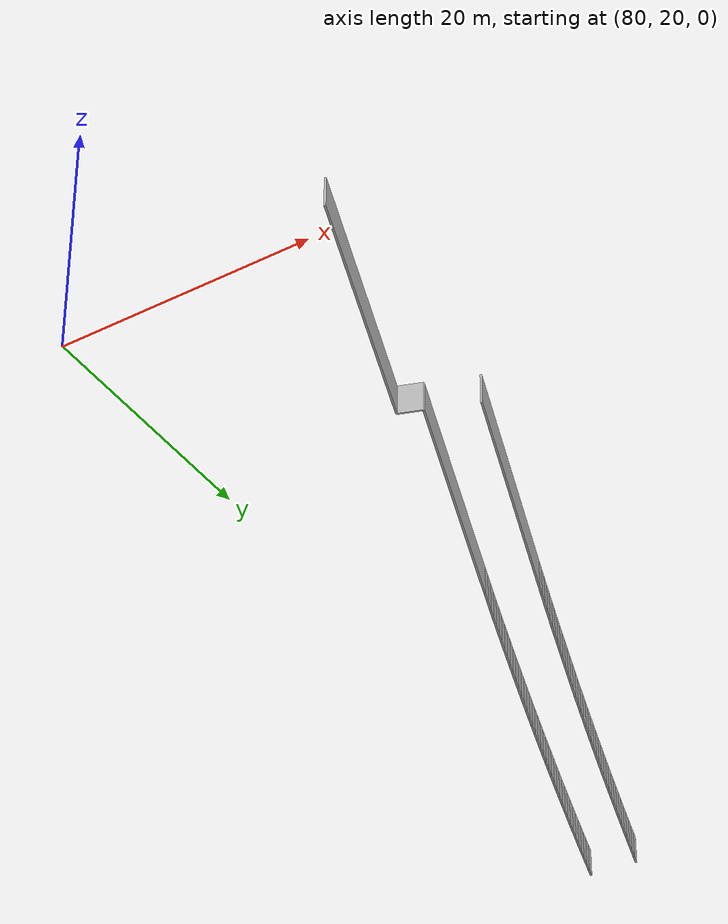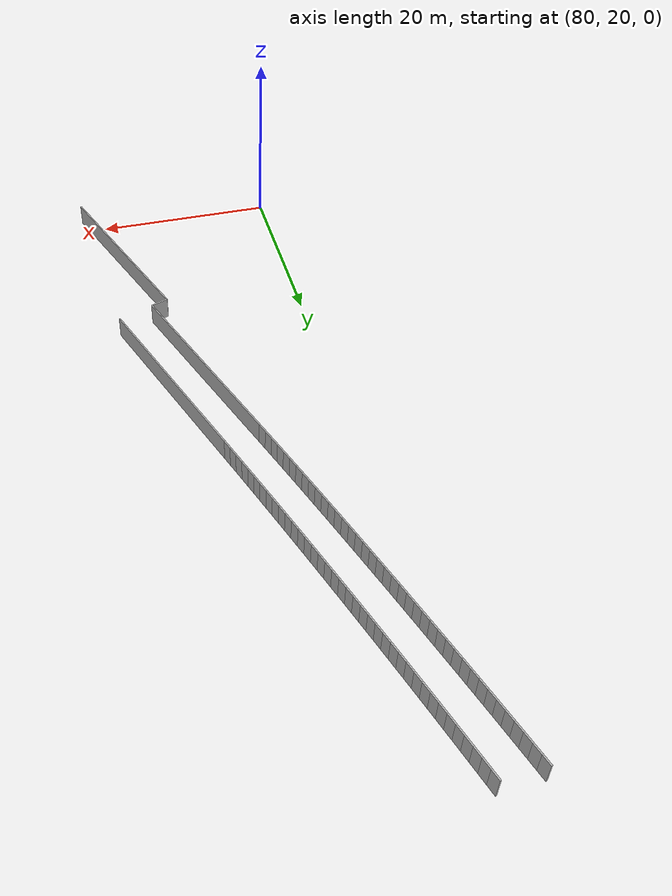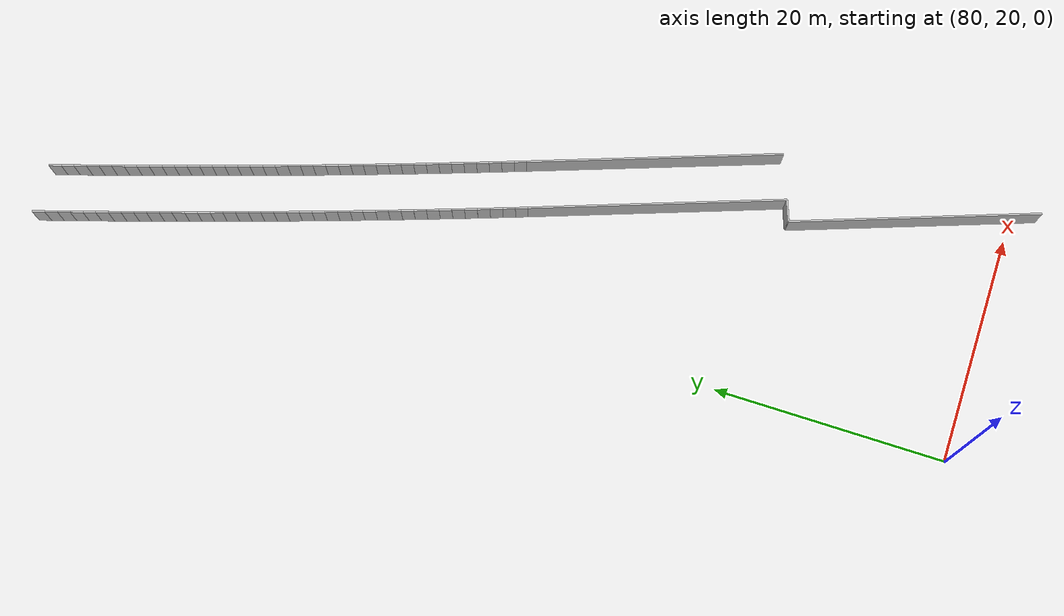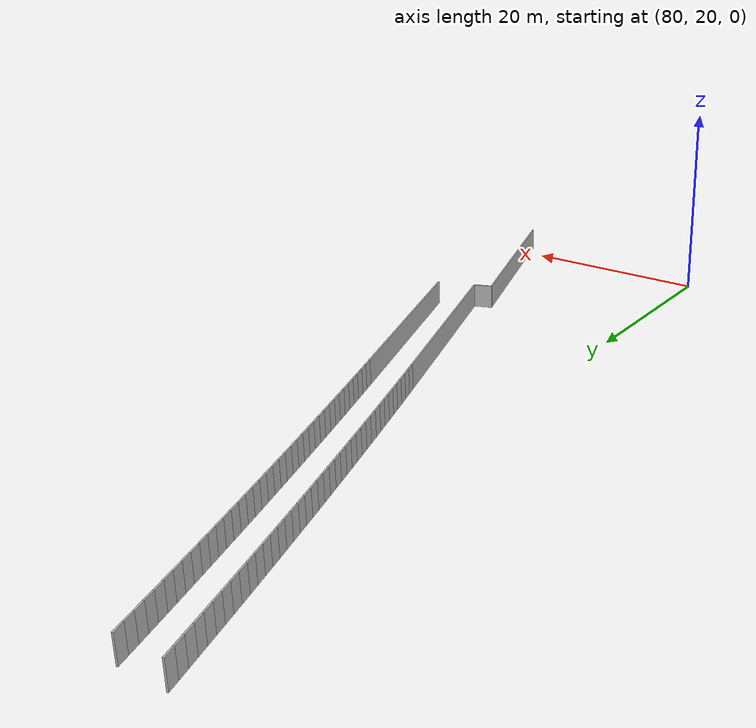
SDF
<?xml version="1.0" ?>
<sdf version="1.6">
  <model name="sps_0109">
    <pose frame="">0 0 0 0 -0 0</pose>
    <static>1</static>
    <self_collide>0</self_collide>
    <allow_auto_disable>0</allow_auto_disable>
    <link name="Wall204">
      <kinematic>0</kinematic>
      <gravity>1</gravity>
      <self_collide>0</self_collide>
      <collision name="collision">
        <geometry>
          <box>
            <size>1.93009 0.15 2.5</size>
          </box>
        </geometry>
        <pose frame="">0 0 0 0 -0 0</pose>
      </collision>
      <visual name="visual">
        <geometry>
          <box>
            <size>1.93009 0.15 2.5</size>
          </box>
        </geometry>
        <pose frame="">0 0 0 0 -0 0</pose>
        <cast_shadows>1</cast_shadows>
        <transparency>0.0</transparency>
      </visual>
      <pose frame="">96.2631 38.5402 1.25 0 -0 0.344273</pose>
    </link>
    <link name="Wall205">
      <kinematic>0</kinematic>
      <gravity>1</gravity>
      <self_collide>0</self_collide>
      <collision name="collision">
        <geometry>
          <box>
            <size>22.055 0.15 2.5</size>
          </box>
        </geometry>
        <pose frame="">0 0 0 0 -0 0</pose>
      </collision>
      <visual name="visual">
        <geometry>
          <box>
            <size>22.055 0.15 2.5</size>
          </box>
        </geometry>
        <pose frame="">0 0 0 0 -0 0</pose>
        <cast_shadows>1</cast_shadows>
        <transparency>0.0</transparency>
      </visual>
      <pose frame="">97.331 50.6375 1.25 0 0 -1.22819</pose>
    </link>
    <link name="Wall265">
      <kinematic>0</kinematic>
      <gravity>1</gravity>
      <self_collide>0</self_collide>
      <collision name="collision">
        <geometry>
          <box>
            <size>21.5873 0.15 2.5</size>
          </box>
        </geometry>
        <pose frame="">0 0 0 0 -0 0</pose>
      </collision>
      <visual name="visual">
        <geometry>
          <box>
            <size>21.5873 0.15 2.5</size>
          </box>
        </geometry>
        <pose frame="">0 0 0 0 -0 0</pose>
        <cast_shadows>1</cast_shadows>
        <transparency>0.0</transparency>
      </visual>
      <pose frame="">98.9965 28.0538 1.25 0 -0 1.91496</pose>
    </link>
    <link name="Wall550">
      <kinematic>0</kinematic>
      <gravity>1</gravity>
      <self_collide>0</self_collide>
      <collision name="collision">
        <geometry>
          <box>
            <size>22.066 0.15 2.5</size>
          </box>
        </geometry>
        <pose frame="">0 0 0 0 -0 0</pose>
      </collision>
      <visual name="visual">
        <geometry>
          <box>
            <size>22.066 0.15 2.5</size>
          </box>
        </geometry>
        <pose frame="">0 0 0 0 -0 0</pose>
        <cast_shadows>1</cast_shadows>
        <transparency>0.0</transparency>
      </visual>
      <pose frame="">93.4485 49.2518 1.25 0 -0 1.91499</pose>
    </link>
    <link name="Wall2783">
      <kinematic>0</kinematic>
      <gravity>1</gravity>
      <self_collide>0</self_collide>
      <collision name="collision">
        <geometry>
          <box>
            <size>1.07589 0.15 2.5</size>
          </box>
        </geometry>
        <pose frame="">0 0 0 0 -0 0</pose>
      </collision>
      <visual name="visual">
        <geometry>
          <box>
            <size>1.07589 0.15 2.5</size>
          </box>
        </geometry>
        <pose frame="">0 0 0 0 -0 0</pose>
        <cast_shadows>1</cast_shadows>
        <transparency>0.0</transparency>
      </visual>
      <pose frame="">80.9273 99.3186 1.25 0 0 -1.27194</pose>
    </link>
    <link name="Wall2784">
      <kinematic>0</kinematic>
      <gravity>1</gravity>
      <self_collide>0</self_collide>
      <collision name="collision">
        <geometry>
          <box>
            <size>1.0759 0.15 2.5</size>
          </box>
        </geometry>
        <pose frame="">0 0 0 0 -0 0</pose>
      </collision>
      <visual name="visual">
        <geometry>
          <box>
            <size>1.0759 0.15 2.5</size>
          </box>
        </geometry>
        <pose frame="">0 0 0 0 -0 0</pose>
        <cast_shadows>1</cast_shadows>
        <transparency>0.0</transparency>
      </visual>
      <pose frame="">81.2447 98.2906 1.25 0 0 -1.27075</pose>
    </link>
    <link name="Wall2785">
      <kinematic>0</kinematic>
      <gravity>1</gravity>
      <self_collide>0</self_collide>
      <collision name="collision">
        <geometry>
          <box>
            <size>1.07603 0.15 2.5</size>
          </box>
        </geometry>
        <pose frame="">0 0 0 0 -0 0</pose>
      </collision>
      <visual name="visual">
        <geometry>
          <box>
            <size>1.07603 0.15 2.5</size>
          </box>
        </geometry>
        <pose frame="">0 0 0 0 -0 0</pose>
        <cast_shadows>1</cast_shadows>
        <transparency>0.0</transparency>
      </visual>
      <pose frame="">81.5633 97.2629 1.25 0 0 -1.2696</pose>
    </link>
    <link name="Wall2786">
      <kinematic>0</kinematic>
      <gravity>1</gravity>
      <self_collide>0</self_collide>
      <collision name="collision">
        <geometry>
          <box>
            <size>1.07602 0.15 2.5</size>
          </box>
        </geometry>
        <pose frame="">0 0 0 0 -0 0</pose>
      </collision>
      <visual name="visual">
        <geometry>
          <box>
            <size>1.07602 0.15 2.5</size>
          </box>
        </geometry>
        <pose frame="">0 0 0 0 -0 0</pose>
        <cast_shadows>1</cast_shadows>
        <transparency>0.0</transparency>
      </visual>
      <pose frame="">81.883 96.2355 1.25 0 0 -1.26847</pose>
    </link>
    <link name="Wall2787">
      <kinematic>0</kinematic>
      <gravity>1</gravity>
      <self_collide>0</self_collide>
      <collision name="collision">
        <geometry>
          <box>
            <size>1.07592 0.15 2.5</size>
          </box>
        </geometry>
        <pose frame="">0 0 0 0 -0 0</pose>
      </collision>
      <visual name="visual">
        <geometry>
          <box>
            <size>1.07592 0.15 2.5</size>
          </box>
        </geometry>
        <pose frame="">0 0 0 0 -0 0</pose>
        <cast_shadows>1</cast_shadows>
        <transparency>0.0</transparency>
      </visual>
      <pose frame="">82.2039 95.2085 1.25 0 0 -1.26743</pose>
    </link>
    <link name="Wall2788">
      <kinematic>0</kinematic>
      <gravity>1</gravity>
      <self_collide>0</self_collide>
      <collision name="collision">
        <geometry>
          <box>
            <size>1.07588 0.15 2.5</size>
          </box>
        </geometry>
        <pose frame="">0 0 0 0 -0 0</pose>
      </collision>
      <visual name="visual">
        <geometry>
          <box>
            <size>1.07588 0.15 2.5</size>
          </box>
        </geometry>
        <pose frame="">0 0 0 0 -0 0</pose>
        <cast_shadows>1</cast_shadows>
        <transparency>0.0</transparency>
      </visual>
      <pose frame="">82.526 94.1819 1.25 0 0 -1.26623</pose>
    </link>
    <link name="Wall2789">
      <kinematic>0</kinematic>
      <gravity>1</gravity>
      <self_collide>0</self_collide>
      <collision name="collision">
        <geometry>
          <box>
            <size>1.07604 0.15 2.5</size>
          </box>
        </geometry>
        <pose frame="">0 0 0 0 -0 0</pose>
      </collision>
      <visual name="visual">
        <geometry>
          <box>
            <size>1.07604 0.15 2.5</size>
          </box>
        </geometry>
        <pose frame="">0 0 0 0 -0 0</pose>
        <cast_shadows>1</cast_shadows>
        <transparency>0.0</transparency>
      </visual>
      <pose frame="">82.8491 93.1556 1.25 0 0 -1.26539</pose>
    </link>
    <link name="Wall2790">
      <kinematic>0</kinematic>
      <gravity>1</gravity>
      <self_collide>0</self_collide>
      <collision name="collision">
        <geometry>
          <box>
            <size>1.07584 0.15 2.5</size>
          </box>
        </geometry>
        <pose frame="">0 0 0 0 -0 0</pose>
      </collision>
      <visual name="visual">
        <geometry>
          <box>
            <size>1.07584 0.15 2.5</size>
          </box>
        </geometry>
        <pose frame="">0 0 0 0 -0 0</pose>
        <cast_shadows>1</cast_shadows>
        <transparency>0.0</transparency>
      </visual>
      <pose frame="">83.1733 92.1297 1.25 0 0 -1.2639</pose>
    </link>
    <link name="Wall2791">
      <kinematic>0</kinematic>
      <gravity>1</gravity>
      <self_collide>0</self_collide>
      <collision name="collision">
        <geometry>
          <box>
            <size>1.07604 0.15 2.5</size>
          </box>
        </geometry>
        <pose frame="">0 0 0 0 -0 0</pose>
      </collision>
      <visual name="visual">
        <geometry>
          <box>
            <size>1.07604 0.15 2.5</size>
          </box>
        </geometry>
        <pose frame="">0 0 0 0 -0 0</pose>
        <cast_shadows>1</cast_shadows>
        <transparency>0.0</transparency>
      </visual>
      <pose frame="">83.499 91.1042 1.25 0 0 -1.26277</pose>
    </link>
    <link name="Wall2792">
      <kinematic>0</kinematic>
      <gravity>1</gravity>
      <self_collide>0</self_collide>
      <collision name="collision">
        <geometry>
          <box>
            <size>1.07598 0.15 2.5</size>
          </box>
        </geometry>
        <pose frame="">0 0 0 0 -0 0</pose>
      </collision>
      <visual name="visual">
        <geometry>
          <box>
            <size>1.07598 0.15 2.5</size>
          </box>
        </geometry>
        <pose frame="">0 0 0 0 -0 0</pose>
        <cast_shadows>1</cast_shadows>
        <transparency>0.0</transparency>
      </visual>
      <pose frame="">83.8257 90.079 1.25 0 0 -1.2618</pose>
    </link>
    <link name="Wall2793">
      <kinematic>0</kinematic>
      <gravity>1</gravity>
      <self_collide>0</self_collide>
      <collision name="collision">
        <geometry>
          <box>
            <size>1.07581 0.15 2.5</size>
          </box>
        </geometry>
        <pose frame="">0 0 0 0 -0 0</pose>
      </collision>
      <visual name="visual">
        <geometry>
          <box>
            <size>1.07581 0.15 2.5</size>
          </box>
        </geometry>
        <pose frame="">0 0 0 0 -0 0</pose>
        <cast_shadows>1</cast_shadows>
        <transparency>0.0</transparency>
      </visual>
      <pose frame="">84.1536 89.0543 1.25 0 0 -1.26044</pose>
    </link>
    <link name="Wall2794">
      <kinematic>0</kinematic>
      <gravity>1</gravity>
      <self_collide>0</self_collide>
      <collision name="collision">
        <geometry>
          <box>
            <size>1.07592 0.15 2.5</size>
          </box>
        </geometry>
        <pose frame="">0 0 0 0 -0 0</pose>
      </collision>
      <visual name="visual">
        <geometry>
          <box>
            <size>1.07592 0.15 2.5</size>
          </box>
        </geometry>
        <pose frame="">0 0 0 0 -0 0</pose>
        <cast_shadows>1</cast_shadows>
        <transparency>0.0</transparency>
      </visual>
      <pose frame="">84.4827 88.03 1.25 0 0 -1.2594</pose>
    </link>
    <link name="Wall2795">
      <kinematic>0</kinematic>
      <gravity>1</gravity>
      <self_collide>0</self_collide>
      <collision name="collision">
        <geometry>
          <box>
            <size>1.0759 0.15 2.5</size>
          </box>
        </geometry>
        <pose frame="">0 0 0 0 -0 0</pose>
      </collision>
      <visual name="visual">
        <geometry>
          <box>
            <size>1.0759 0.15 2.5</size>
          </box>
        </geometry>
        <pose frame="">0 0 0 0 -0 0</pose>
        <cast_shadows>1</cast_shadows>
        <transparency>0.0</transparency>
      </visual>
      <pose frame="">84.8129 87.006 1.25 0 0 -1.25832</pose>
    </link>
    <link name="Wall2796">
      <kinematic>0</kinematic>
      <gravity>1</gravity>
      <self_collide>0</self_collide>
      <collision name="collision">
        <geometry>
          <box>
            <size>1.07612 0.15 2.5</size>
          </box>
        </geometry>
        <pose frame="">0 0 0 0 -0 0</pose>
      </collision>
      <visual name="visual">
        <geometry>
          <box>
            <size>1.07612 0.15 2.5</size>
          </box>
        </geometry>
        <pose frame="">0 0 0 0 -0 0</pose>
        <cast_shadows>1</cast_shadows>
        <transparency>0.0</transparency>
      </visual>
      <pose frame="">85.1442 85.9823 1.25 0 0 -1.25713</pose>
    </link>
    <link name="Wall2797">
      <kinematic>0</kinematic>
      <gravity>1</gravity>
      <self_collide>0</self_collide>
      <collision name="collision">
        <geometry>
          <box>
            <size>1.0759 0.15 2.5</size>
          </box>
        </geometry>
        <pose frame="">0 0 0 0 -0 0</pose>
      </collision>
      <visual name="visual">
        <geometry>
          <box>
            <size>1.0759 0.15 2.5</size>
          </box>
        </geometry>
        <pose frame="">0 0 0 0 -0 0</pose>
        <cast_shadows>1</cast_shadows>
        <transparency>0.0</transparency>
      </visual>
      <pose frame="">85.4769 84.959 1.25 0 0 -1.25593</pose>
    </link>
    <link name="Wall2798">
      <kinematic>0</kinematic>
      <gravity>1</gravity>
      <self_collide>0</self_collide>
      <collision name="collision">
        <geometry>
          <box>
            <size>1.07599 0.15 2.5</size>
          </box>
        </geometry>
        <pose frame="">0 0 0 0 -0 0</pose>
      </collision>
      <visual name="visual">
        <geometry>
          <box>
            <size>1.07599 0.15 2.5</size>
          </box>
        </geometry>
        <pose frame="">0 0 0 0 -0 0</pose>
        <cast_shadows>1</cast_shadows>
        <transparency>0.0</transparency>
      </visual>
      <pose frame="">85.8106 83.9361 1.25 0 0 -1.25495</pose>
    </link>
    <link name="Wall2799">
      <kinematic>0</kinematic>
      <gravity>1</gravity>
      <self_collide>0</self_collide>
      <collision name="collision">
        <geometry>
          <box>
            <size>1.07589 0.15 2.5</size>
          </box>
        </geometry>
        <pose frame="">0 0 0 0 -0 0</pose>
      </collision>
      <visual name="visual">
        <geometry>
          <box>
            <size>1.07589 0.15 2.5</size>
          </box>
        </geometry>
        <pose frame="">0 0 0 0 -0 0</pose>
        <cast_shadows>1</cast_shadows>
        <transparency>0.0</transparency>
      </visual>
      <pose frame="">86.1455 82.9136 1.25 0 0 -1.2536</pose>
    </link>
    <link name="Wall2800">
      <kinematic>0</kinematic>
      <gravity>1</gravity>
      <self_collide>0</self_collide>
      <collision name="collision">
        <geometry>
          <box>
            <size>1.07598 0.15 2.5</size>
          </box>
        </geometry>
        <pose frame="">0 0 0 0 -0 0</pose>
      </collision>
      <visual name="visual">
        <geometry>
          <box>
            <size>1.07598 0.15 2.5</size>
          </box>
        </geometry>
        <pose frame="">0 0 0 0 -0 0</pose>
        <cast_shadows>1</cast_shadows>
        <transparency>0.0</transparency>
      </visual>
      <pose frame="">86.4816 81.8915 1.25 0 0 -1.25262</pose>
    </link>
    <link name="Wall2801">
      <kinematic>0</kinematic>
      <gravity>1</gravity>
      <self_collide>0</self_collide>
      <collision name="collision">
        <geometry>
          <box>
            <size>1.076 0.15 2.5</size>
          </box>
        </geometry>
        <pose frame="">0 0 0 0 -0 0</pose>
      </collision>
      <visual name="visual">
        <geometry>
          <box>
            <size>1.076 0.15 2.5</size>
          </box>
        </geometry>
        <pose frame="">0 0 0 0 -0 0</pose>
        <cast_shadows>1</cast_shadows>
        <transparency>0.0</transparency>
      </visual>
      <pose frame="">86.8187 80.8697 1.25 0 0 -1.25149</pose>
    </link>
    <link name="Wall2802">
      <kinematic>0</kinematic>
      <gravity>1</gravity>
      <self_collide>0</self_collide>
      <collision name="collision">
        <geometry>
          <box>
            <size>1.07582 0.15 2.5</size>
          </box>
        </geometry>
        <pose frame="">0 0 0 0 -0 0</pose>
      </collision>
      <visual name="visual">
        <geometry>
          <box>
            <size>1.07582 0.15 2.5</size>
          </box>
        </geometry>
        <pose frame="">0 0 0 0 -0 0</pose>
        <cast_shadows>1</cast_shadows>
        <transparency>0.0</transparency>
      </visual>
      <pose frame="">87.1572 79.8484 1.25 0 0 -1.25018</pose>
    </link>
    <link name="Wall2803">
      <kinematic>0</kinematic>
      <gravity>1</gravity>
      <self_collide>0</self_collide>
      <collision name="collision">
        <geometry>
          <box>
            <size>1.07593 0.15 2.5</size>
          </box>
        </geometry>
        <pose frame="">0 0 0 0 -0 0</pose>
      </collision>
      <visual name="visual">
        <geometry>
          <box>
            <size>1.07593 0.15 2.5</size>
          </box>
        </geometry>
        <pose frame="">0 0 0 0 -0 0</pose>
        <cast_shadows>1</cast_shadows>
        <transparency>0.0</transparency>
      </visual>
      <pose frame="">87.4967 78.8275 1.25 0 0 -1.24931</pose>
    </link>
    <link name="Wall2804">
      <kinematic>0</kinematic>
      <gravity>1</gravity>
      <self_collide>0</self_collide>
      <collision name="collision">
        <geometry>
          <box>
            <size>1.07599 0.15 2.5</size>
          </box>
        </geometry>
        <pose frame="">0 0 0 0 -0 0</pose>
      </collision>
      <visual name="visual">
        <geometry>
          <box>
            <size>1.07599 0.15 2.5</size>
          </box>
        </geometry>
        <pose frame="">0 0 0 0 -0 0</pose>
        <cast_shadows>1</cast_shadows>
        <transparency>0.0</transparency>
      </visual>
      <pose frame="">87.8374 77.8069 1.25 0 0 -1.2479</pose>
    </link>
    <link name="Wall2805">
      <kinematic>0</kinematic>
      <gravity>1</gravity>
      <self_collide>0</self_collide>
      <collision name="collision">
        <geometry>
          <box>
            <size>1.07596 0.15 2.5</size>
          </box>
        </geometry>
        <pose frame="">0 0 0 0 -0 0</pose>
      </collision>
      <visual name="visual">
        <geometry>
          <box>
            <size>1.07596 0.15 2.5</size>
          </box>
        </geometry>
        <pose frame="">0 0 0 0 -0 0</pose>
        <cast_shadows>1</cast_shadows>
        <transparency>0.0</transparency>
      </visual>
      <pose frame="">88.1793 76.7867 1.25 0 0 -1.24693</pose>
    </link>
    <link name="Wall2806">
      <kinematic>0</kinematic>
      <gravity>1</gravity>
      <self_collide>0</self_collide>
      <collision name="collision">
        <geometry>
          <box>
            <size>1.07592 0.15 2.5</size>
          </box>
        </geometry>
        <pose frame="">0 0 0 0 -0 0</pose>
      </collision>
      <visual name="visual">
        <geometry>
          <box>
            <size>1.07592 0.15 2.5</size>
          </box>
        </geometry>
        <pose frame="">0 0 0 0 -0 0</pose>
        <cast_shadows>1</cast_shadows>
        <transparency>0.0</transparency>
      </visual>
      <pose frame="">88.5223 75.7669 1.25 0 0 -1.24578</pose>
    </link>
    <link name="Wall2807">
      <kinematic>0</kinematic>
      <gravity>1</gravity>
      <self_collide>0</self_collide>
      <collision name="collision">
        <geometry>
          <box>
            <size>1.07596 0.15 2.5</size>
          </box>
        </geometry>
        <pose frame="">0 0 0 0 -0 0</pose>
      </collision>
      <visual name="visual">
        <geometry>
          <box>
            <size>1.07596 0.15 2.5</size>
          </box>
        </geometry>
        <pose frame="">0 0 0 0 -0 0</pose>
        <cast_shadows>1</cast_shadows>
        <transparency>0.0</transparency>
      </visual>
      <pose frame="">88.8664 74.7475 1.25 0 0 -1.2446</pose>
    </link>
    <link name="Wall2808">
      <kinematic>0</kinematic>
      <gravity>1</gravity>
      <self_collide>0</self_collide>
      <collision name="collision">
        <geometry>
          <box>
            <size>1.07595 0.15 2.5</size>
          </box>
        </geometry>
        <pose frame="">0 0 0 0 -0 0</pose>
      </collision>
      <visual name="visual">
        <geometry>
          <box>
            <size>1.07595 0.15 2.5</size>
          </box>
        </geometry>
        <pose frame="">0 0 0 0 -0 0</pose>
        <cast_shadows>1</cast_shadows>
        <transparency>0.0</transparency>
      </visual>
      <pose frame="">89.2118 73.7285 1.25 0 0 -1.2434</pose>
    </link>
    <link name="Wall2809">
      <kinematic>0</kinematic>
      <gravity>1</gravity>
      <self_collide>0</self_collide>
      <collision name="collision">
        <geometry>
          <box>
            <size>1.07586 0.15 2.5</size>
          </box>
        </geometry>
        <pose frame="">0 0 0 0 -0 0</pose>
      </collision>
      <visual name="visual">
        <geometry>
          <box>
            <size>1.07586 0.15 2.5</size>
          </box>
        </geometry>
        <pose frame="">0 0 0 0 -0 0</pose>
        <cast_shadows>1</cast_shadows>
        <transparency>0.0</transparency>
      </visual>
      <pose frame="">89.5583 72.7099 1.25 0 0 -1.24241</pose>
    </link>
    <link name="Wall2810">
      <kinematic>0</kinematic>
      <gravity>1</gravity>
      <self_collide>0</self_collide>
      <collision name="collision">
        <geometry>
          <box>
            <size>1.07608 0.15 2.5</size>
          </box>
        </geometry>
        <pose frame="">0 0 0 0 -0 0</pose>
      </collision>
      <visual name="visual">
        <geometry>
          <box>
            <size>1.07608 0.15 2.5</size>
          </box>
        </geometry>
        <pose frame="">0 0 0 0 -0 0</pose>
        <cast_shadows>1</cast_shadows>
        <transparency>0.0</transparency>
      </visual>
      <pose frame="">89.9059 71.6916 1.25 0 0 -1.24128</pose>
    </link>
    <link name="Wall2811">
      <kinematic>0</kinematic>
      <gravity>1</gravity>
      <self_collide>0</self_collide>
      <collision name="collision">
        <geometry>
          <box>
            <size>1.07596 0.15 2.5</size>
          </box>
        </geometry>
        <pose frame="">0 0 0 0 -0 0</pose>
      </collision>
      <visual name="visual">
        <geometry>
          <box>
            <size>1.07596 0.15 2.5</size>
          </box>
        </geometry>
        <pose frame="">0 0 0 0 -0 0</pose>
        <cast_shadows>1</cast_shadows>
        <transparency>0.0</transparency>
      </visual>
      <pose frame="">90.2548 70.6737 1.25 0 0 -1.24004</pose>
    </link>
    <link name="Wall2812">
      <kinematic>0</kinematic>
      <gravity>1</gravity>
      <self_collide>0</self_collide>
      <collision name="collision">
        <geometry>
          <box>
            <size>1.07587 0.15 2.5</size>
          </box>
        </geometry>
        <pose frame="">0 0 0 0 -0 0</pose>
      </collision>
      <visual name="visual">
        <geometry>
          <box>
            <size>1.07587 0.15 2.5</size>
          </box>
        </geometry>
        <pose frame="">0 0 0 0 -0 0</pose>
        <cast_shadows>1</cast_shadows>
        <transparency>0.0</transparency>
      </visual>
      <pose frame="">90.6048 69.6563 1.25 0 0 -1.23887</pose>
    </link>
    <link name="Wall2813">
      <kinematic>0</kinematic>
      <gravity>1</gravity>
      <self_collide>0</self_collide>
      <collision name="collision">
        <geometry>
          <box>
            <size>1.07592 0.15 2.5</size>
          </box>
        </geometry>
        <pose frame="">0 0 0 0 -0 0</pose>
      </collision>
      <visual name="visual">
        <geometry>
          <box>
            <size>1.07592 0.15 2.5</size>
          </box>
        </geometry>
        <pose frame="">0 0 0 0 -0 0</pose>
        <cast_shadows>1</cast_shadows>
        <transparency>0.0</transparency>
      </visual>
      <pose frame="">90.9559 68.6393 1.25 0 0 -1.23787</pose>
    </link>
    <link name="Wall2814">
      <kinematic>0</kinematic>
      <gravity>1</gravity>
      <self_collide>0</self_collide>
      <collision name="collision">
        <geometry>
          <box>
            <size>1.0759 0.15 2.5</size>
          </box>
        </geometry>
        <pose frame="">0 0 0 0 -0 0</pose>
      </collision>
      <visual name="visual">
        <geometry>
          <box>
            <size>1.0759 0.15 2.5</size>
          </box>
        </geometry>
        <pose frame="">0 0 0 0 -0 0</pose>
        <cast_shadows>1</cast_shadows>
        <transparency>0.0</transparency>
      </visual>
      <pose frame="">91.3082 67.6227 1.25 0 0 -1.23654</pose>
    </link>
    <link name="Wall2815">
      <kinematic>0</kinematic>
      <gravity>1</gravity>
      <self_collide>0</self_collide>
      <collision name="collision">
        <geometry>
          <box>
            <size>1.07613 0.15 2.5</size>
          </box>
        </geometry>
        <pose frame="">0 0 0 0 -0 0</pose>
      </collision>
      <visual name="visual">
        <geometry>
          <box>
            <size>1.07613 0.15 2.5</size>
          </box>
        </geometry>
        <pose frame="">0 0 0 0 -0 0</pose>
        <cast_shadows>1</cast_shadows>
        <transparency>0.0</transparency>
      </visual>
      <pose frame="">91.6616 66.6064 1.25 0 0 -1.23559</pose>
    </link>
    <link name="Wall2816">
      <kinematic>0</kinematic>
      <gravity>1</gravity>
      <self_collide>0</self_collide>
      <collision name="collision">
        <geometry>
          <box>
            <size>1.07619 0.15 2.5</size>
          </box>
        </geometry>
        <pose frame="">0 0 0 0 -0 0</pose>
      </collision>
      <visual name="visual">
        <geometry>
          <box>
            <size>1.07619 0.15 2.5</size>
          </box>
        </geometry>
        <pose frame="">0 0 0 0 -0 0</pose>
        <cast_shadows>1</cast_shadows>
        <transparency>0.0</transparency>
      </visual>
      <pose frame="">92.0163 65.5904 1.25 0 0 -1.23423</pose>
    </link>
    <link name="Wall2817">
      <kinematic>0</kinematic>
      <gravity>1</gravity>
      <self_collide>0</self_collide>
      <collision name="collision">
        <geometry>
          <box>
            <size>1.07611 0.15 2.5</size>
          </box>
        </geometry>
        <pose frame="">0 0 0 0 -0 0</pose>
      </collision>
      <visual name="visual">
        <geometry>
          <box>
            <size>1.07611 0.15 2.5</size>
          </box>
        </geometry>
        <pose frame="">0 0 0 0 -0 0</pose>
        <cast_shadows>1</cast_shadows>
        <transparency>0.0</transparency>
      </visual>
      <pose frame="">92.3722 64.5748 1.25 0 0 -1.23324</pose>
    </link>
    <link name="Wall2818">
      <kinematic>0</kinematic>
      <gravity>1</gravity>
      <self_collide>0</self_collide>
      <collision name="collision">
        <geometry>
          <box>
            <size>1.07588 0.15 2.5</size>
          </box>
        </geometry>
        <pose frame="">0 0 0 0 -0 0</pose>
      </collision>
      <visual name="visual">
        <geometry>
          <box>
            <size>1.07588 0.15 2.5</size>
          </box>
        </geometry>
        <pose frame="">0 0 0 0 -0 0</pose>
        <cast_shadows>1</cast_shadows>
        <transparency>0.0</transparency>
      </visual>
      <pose frame="">92.7291 63.5597 1.25 0 0 -1.23215</pose>
    </link>
    <link name="Wall2819">
      <kinematic>0</kinematic>
      <gravity>1</gravity>
      <self_collide>0</self_collide>
      <collision name="collision">
        <geometry>
          <box>
            <size>1.07574 0.15 2.5</size>
          </box>
        </geometry>
        <pose frame="">0 0 0 0 -0 0</pose>
      </collision>
      <visual name="visual">
        <geometry>
          <box>
            <size>1.07574 0.15 2.5</size>
          </box>
        </geometry>
        <pose frame="">0 0 0 0 -0 0</pose>
        <cast_shadows>1</cast_shadows>
        <transparency>0.0</transparency>
      </visual>
      <pose frame="">93.0871 62.5452 1.25 0 0 -1.23096</pose>
    </link>
    <link name="Wall2820">
      <kinematic>0</kinematic>
      <gravity>1</gravity>
      <self_collide>0</self_collide>
      <collision name="collision">
        <geometry>
          <box>
            <size>1.07598 0.15 2.5</size>
          </box>
        </geometry>
        <pose frame="">0 0 0 0 -0 0</pose>
      </collision>
      <visual name="visual">
        <geometry>
          <box>
            <size>1.07598 0.15 2.5</size>
          </box>
        </geometry>
        <pose frame="">0 0 0 0 -0 0</pose>
        <cast_shadows>1</cast_shadows>
        <transparency>0.0</transparency>
      </visual>
      <pose frame="">93.4464 61.5311 1.25 0 0 -1.22965</pose>
    </link>
    <link name="Wall8918">
      <kinematic>0</kinematic>
      <gravity>1</gravity>
      <self_collide>0</self_collide>
      <collision name="collision">
        <geometry>
          <box>
            <size>1.08074 0.15 2.5</size>
          </box>
        </geometry>
        <pose frame="">0 0 0 0 -0 0</pose>
      </collision>
      <visual name="visual">
        <geometry>
          <box>
            <size>1.08074 0.15 2.5</size>
          </box>
        </geometry>
        <pose frame="">0 0 0 0 -0 0</pose>
        <cast_shadows>1</cast_shadows>
        <transparency>0.0</transparency>
      </visual>
      <pose frame="">76.6533 99.1327 1.25 0 0 -1.27309</pose>
    </link>
    <link name="Wall8919">
      <kinematic>0</kinematic>
      <gravity>1</gravity>
      <self_collide>0</self_collide>
      <collision name="collision">
        <geometry>
          <box>
            <size>1.08074 0.15 2.5</size>
          </box>
        </geometry>
        <pose frame="">0 0 0 0 -0 0</pose>
      </collision>
      <visual name="visual">
        <geometry>
          <box>
            <size>1.08074 0.15 2.5</size>
          </box>
        </geometry>
        <pose frame="">0 0 0 0 -0 0</pose>
        <cast_shadows>1</cast_shadows>
        <transparency>0.0</transparency>
      </visual>
      <pose frame="">76.9709 98.0997 1.25 0 0 -1.27196</pose>
    </link>
    <link name="Wall8920">
      <kinematic>0</kinematic>
      <gravity>1</gravity>
      <self_collide>0</self_collide>
      <collision name="collision">
        <geometry>
          <box>
            <size>1.08057 0.15 2.5</size>
          </box>
        </geometry>
        <pose frame="">0 0 0 0 -0 0</pose>
      </collision>
      <visual name="visual">
        <geometry>
          <box>
            <size>1.08057 0.15 2.5</size>
          </box>
        </geometry>
        <pose frame="">0 0 0 0 -0 0</pose>
        <cast_shadows>1</cast_shadows>
        <transparency>0.0</transparency>
      </visual>
      <pose frame="">77.2896 97.0671 1.25 0 0 -1.27091</pose>
    </link>
    <link name="Wall8921">
      <kinematic>0</kinematic>
      <gravity>1</gravity>
      <self_collide>0</self_collide>
      <collision name="collision">
        <geometry>
          <box>
            <size>1.0807 0.15 2.5</size>
          </box>
        </geometry>
        <pose frame="">0 0 0 0 -0 0</pose>
      </collision>
      <visual name="visual">
        <geometry>
          <box>
            <size>1.0807 0.15 2.5</size>
          </box>
        </geometry>
        <pose frame="">0 0 0 0 -0 0</pose>
        <cast_shadows>1</cast_shadows>
        <transparency>0.0</transparency>
      </visual>
      <pose frame="">77.6095 96.0349 1.25 0 0 -1.26959</pose>
    </link>
    <link name="Wall8922">
      <kinematic>0</kinematic>
      <gravity>1</gravity>
      <self_collide>0</self_collide>
      <collision name="collision">
        <geometry>
          <box>
            <size>1.08081 0.15 2.5</size>
          </box>
        </geometry>
        <pose frame="">0 0 0 0 -0 0</pose>
      </collision>
      <visual name="visual">
        <geometry>
          <box>
            <size>1.08081 0.15 2.5</size>
          </box>
        </geometry>
        <pose frame="">0 0 0 0 -0 0</pose>
        <cast_shadows>1</cast_shadows>
        <transparency>0.0</transparency>
      </visual>
      <pose frame="">77.9307 95.003 1.25 0 0 -1.26849</pose>
    </link>
    <link name="Wall8923">
      <kinematic>0</kinematic>
      <gravity>1</gravity>
      <self_collide>0</self_collide>
      <collision name="collision">
        <geometry>
          <box>
            <size>1.08054 0.15 2.5</size>
          </box>
        </geometry>
        <pose frame="">0 0 0 0 -0 0</pose>
      </collision>
      <visual name="visual">
        <geometry>
          <box>
            <size>1.08054 0.15 2.5</size>
          </box>
        </geometry>
        <pose frame="">0 0 0 0 -0 0</pose>
        <cast_shadows>1</cast_shadows>
        <transparency>0.0</transparency>
      </visual>
      <pose frame="">78.253 93.9715 1.25 0 0 -1.26741</pose>
    </link>
    <link name="Wall8924">
      <kinematic>0</kinematic>
      <gravity>1</gravity>
      <self_collide>0</self_collide>
      <collision name="collision">
        <geometry>
          <box>
            <size>1.08071 0.15 2.5</size>
          </box>
        </geometry>
        <pose frame="">0 0 0 0 -0 0</pose>
      </collision>
      <visual name="visual">
        <geometry>
          <box>
            <size>1.08071 0.15 2.5</size>
          </box>
        </geometry>
        <pose frame="">0 0 0 0 -0 0</pose>
        <cast_shadows>1</cast_shadows>
        <transparency>0.0</transparency>
      </visual>
      <pose frame="">78.5764 92.9404 1.25 0 0 -1.26633</pose>
    </link>
    <link name="Wall8925">
      <kinematic>0</kinematic>
      <gravity>1</gravity>
      <self_collide>0</self_collide>
      <collision name="collision">
        <geometry>
          <box>
            <size>1.08069 0.15 2.5</size>
          </box>
        </geometry>
        <pose frame="">0 0 0 0 -0 0</pose>
      </collision>
      <visual name="visual">
        <geometry>
          <box>
            <size>1.08069 0.15 2.5</size>
          </box>
        </geometry>
        <pose frame="">0 0 0 0 -0 0</pose>
        <cast_shadows>1</cast_shadows>
        <transparency>0.0</transparency>
      </visual>
      <pose frame="">78.9011 91.9096 1.25 0 0 -1.26508</pose>
    </link>
    <link name="Wall8926">
      <kinematic>0</kinematic>
      <gravity>1</gravity>
      <self_collide>0</self_collide>
      <collision name="collision">
        <geometry>
          <box>
            <size>1.08049 0.15 2.5</size>
          </box>
        </geometry>
        <pose frame="">0 0 0 0 -0 0</pose>
      </collision>
      <visual name="visual">
        <geometry>
          <box>
            <size>1.08049 0.15 2.5</size>
          </box>
        </geometry>
        <pose frame="">0 0 0 0 -0 0</pose>
        <cast_shadows>1</cast_shadows>
        <transparency>0.0</transparency>
      </visual>
      <pose frame="">79.2269 90.8793 1.25 0 0 -1.26396</pose>
    </link>
    <link name="Wall8927">
      <kinematic>0</kinematic>
      <gravity>1</gravity>
      <self_collide>0</self_collide>
      <collision name="collision">
        <geometry>
          <box>
            <size>1.08065 0.15 2.5</size>
          </box>
        </geometry>
        <pose frame="">0 0 0 0 -0 0</pose>
      </collision>
      <visual name="visual">
        <geometry>
          <box>
            <size>1.08065 0.15 2.5</size>
          </box>
        </geometry>
        <pose frame="">0 0 0 0 -0 0</pose>
        <cast_shadows>1</cast_shadows>
        <transparency>0.0</transparency>
      </visual>
      <pose frame="">79.5539 89.8494 1.25 0 0 -1.26276</pose>
    </link>
    <link name="Wall8928">
      <kinematic>0</kinematic>
      <gravity>1</gravity>
      <self_collide>0</self_collide>
      <collision name="collision">
        <geometry>
          <box>
            <size>1.08058 0.15 2.5</size>
          </box>
        </geometry>
        <pose frame="">0 0 0 0 -0 0</pose>
      </collision>
      <visual name="visual">
        <geometry>
          <box>
            <size>1.08058 0.15 2.5</size>
          </box>
        </geometry>
        <pose frame="">0 0 0 0 -0 0</pose>
        <cast_shadows>1</cast_shadows>
        <transparency>0.0</transparency>
      </visual>
      <pose frame="">79.8819 88.8198 1.25 0 0 -1.26185</pose>
    </link>
    <link name="Wall8929">
      <kinematic>0</kinematic>
      <gravity>1</gravity>
      <self_collide>0</self_collide>
      <collision name="collision">
        <geometry>
          <box>
            <size>1.08079 0.15 2.5</size>
          </box>
        </geometry>
        <pose frame="">0 0 0 0 -0 0</pose>
      </collision>
      <visual name="visual">
        <geometry>
          <box>
            <size>1.08079 0.15 2.5</size>
          </box>
        </geometry>
        <pose frame="">0 0 0 0 -0 0</pose>
        <cast_shadows>1</cast_shadows>
        <transparency>0.0</transparency>
      </visual>
      <pose frame="">80.2112 87.7905 1.25 0 0 -1.26049</pose>
    </link>
    <link name="Wall8930">
      <kinematic>0</kinematic>
      <gravity>1</gravity>
      <self_collide>0</self_collide>
      <collision name="collision">
        <geometry>
          <box>
            <size>1.08057 0.15 2.5</size>
          </box>
        </geometry>
        <pose frame="">0 0 0 0 -0 0</pose>
      </collision>
      <visual name="visual">
        <geometry>
          <box>
            <size>1.08057 0.15 2.5</size>
          </box>
        </geometry>
        <pose frame="">0 0 0 0 -0 0</pose>
        <cast_shadows>1</cast_shadows>
        <transparency>0.0</transparency>
      </visual>
      <pose frame="">80.5417 86.7616 1.25 0 0 -1.25948</pose>
    </link>
    <link name="Wall8931">
      <kinematic>0</kinematic>
      <gravity>1</gravity>
      <self_collide>0</self_collide>
      <collision name="collision">
        <geometry>
          <box>
            <size>1.08077 0.15 2.5</size>
          </box>
        </geometry>
        <pose frame="">0 0 0 0 -0 0</pose>
      </collision>
      <visual name="visual">
        <geometry>
          <box>
            <size>1.08077 0.15 2.5</size>
          </box>
        </geometry>
        <pose frame="">0 0 0 0 -0 0</pose>
        <cast_shadows>1</cast_shadows>
        <transparency>0.0</transparency>
      </visual>
      <pose frame="">80.8734 85.7331 1.25 0 0 -1.25817</pose>
    </link>
    <link name="Wall8932">
      <kinematic>0</kinematic>
      <gravity>1</gravity>
      <self_collide>0</self_collide>
      <collision name="collision">
        <geometry>
          <box>
            <size>1.08074 0.15 2.5</size>
          </box>
        </geometry>
        <pose frame="">0 0 0 0 -0 0</pose>
      </collision>
      <visual name="visual">
        <geometry>
          <box>
            <size>1.08074 0.15 2.5</size>
          </box>
        </geometry>
        <pose frame="">0 0 0 0 -0 0</pose>
        <cast_shadows>1</cast_shadows>
        <transparency>0.0</transparency>
      </visual>
      <pose frame="">81.2064 84.7049 1.25 0 0 -1.25715</pose>
    </link>
    <link name="Wall8933">
      <kinematic>0</kinematic>
      <gravity>1</gravity>
      <self_collide>0</self_collide>
      <collision name="collision">
        <geometry>
          <box>
            <size>1.08069 0.15 2.5</size>
          </box>
        </geometry>
        <pose frame="">0 0 0 0 -0 0</pose>
      </collision>
      <visual name="visual">
        <geometry>
          <box>
            <size>1.08069 0.15 2.5</size>
          </box>
        </geometry>
        <pose frame="">0 0 0 0 -0 0</pose>
        <cast_shadows>1</cast_shadows>
        <transparency>0.0</transparency>
      </visual>
      <pose frame="">81.5404 83.6771 1.25 0 0 -1.25601</pose>
    </link>
    <link name="Wall8934">
      <kinematic>0</kinematic>
      <gravity>1</gravity>
      <self_collide>0</self_collide>
      <collision name="collision">
        <geometry>
          <box>
            <size>1.08066 0.15 2.5</size>
          </box>
        </geometry>
        <pose frame="">0 0 0 0 -0 0</pose>
      </collision>
      <visual name="visual">
        <geometry>
          <box>
            <size>1.08066 0.15 2.5</size>
          </box>
        </geometry>
        <pose frame="">0 0 0 0 -0 0</pose>
        <cast_shadows>1</cast_shadows>
        <transparency>0.0</transparency>
      </visual>
      <pose frame="">81.8756 82.6497 1.25 0 0 -1.25481</pose>
    </link>
    <link name="Wall8935">
      <kinematic>0</kinematic>
      <gravity>1</gravity>
      <self_collide>0</self_collide>
      <collision name="collision">
        <geometry>
          <box>
            <size>1.08068 0.15 2.5</size>
          </box>
        </geometry>
        <pose frame="">0 0 0 0 -0 0</pose>
      </collision>
      <visual name="visual">
        <geometry>
          <box>
            <size>1.08068 0.15 2.5</size>
          </box>
        </geometry>
        <pose frame="">0 0 0 0 -0 0</pose>
        <cast_shadows>1</cast_shadows>
        <transparency>0.0</transparency>
      </visual>
      <pose frame="">82.2119 81.6227 1.25 0 0 -1.25387</pose>
    </link>
    <link name="Wall8936">
      <kinematic>0</kinematic>
      <gravity>1</gravity>
      <self_collide>0</self_collide>
      <collision name="collision">
        <geometry>
          <box>
            <size>1.08065 0.15 2.5</size>
          </box>
        </geometry>
        <pose frame="">0 0 0 0 -0 0</pose>
      </collision>
      <visual name="visual">
        <geometry>
          <box>
            <size>1.08065 0.15 2.5</size>
          </box>
        </geometry>
        <pose frame="">0 0 0 0 -0 0</pose>
        <cast_shadows>1</cast_shadows>
        <transparency>0.0</transparency>
      </visual>
      <pose frame="">82.5494 80.5961 1.25 0 0 -1.25249</pose>
    </link>
    <link name="Wall8937">
      <kinematic>0</kinematic>
      <gravity>1</gravity>
      <self_collide>0</self_collide>
      <collision name="collision">
        <geometry>
          <box>
            <size>1.08061 0.15 2.5</size>
          </box>
        </geometry>
        <pose frame="">0 0 0 0 -0 0</pose>
      </collision>
      <visual name="visual">
        <geometry>
          <box>
            <size>1.08061 0.15 2.5</size>
          </box>
        </geometry>
        <pose frame="">0 0 0 0 -0 0</pose>
        <cast_shadows>1</cast_shadows>
        <transparency>0.0</transparency>
      </visual>
      <pose frame="">82.8881 79.5699 1.25 0 0 -1.25153</pose>
    </link>
    <link name="Wall8938">
      <kinematic>0</kinematic>
      <gravity>1</gravity>
      <self_collide>0</self_collide>
      <collision name="collision">
        <geometry>
          <box>
            <size>1.08072 0.15 2.5</size>
          </box>
        </geometry>
        <pose frame="">0 0 0 0 -0 0</pose>
      </collision>
      <visual name="visual">
        <geometry>
          <box>
            <size>1.08072 0.15 2.5</size>
          </box>
        </geometry>
        <pose frame="">0 0 0 0 -0 0</pose>
        <cast_shadows>1</cast_shadows>
        <transparency>0.0</transparency>
      </visual>
      <pose frame="">83.228 78.5441 1.25 0 0 -1.25014</pose>
    </link>
    <link name="Wall8939">
      <kinematic>0</kinematic>
      <gravity>1</gravity>
      <self_collide>0</self_collide>
      <collision name="collision">
        <geometry>
          <box>
            <size>1.08055 0.15 2.5</size>
          </box>
        </geometry>
        <pose frame="">0 0 0 0 -0 0</pose>
      </collision>
      <visual name="visual">
        <geometry>
          <box>
            <size>1.08055 0.15 2.5</size>
          </box>
        </geometry>
        <pose frame="">0 0 0 0 -0 0</pose>
        <cast_shadows>1</cast_shadows>
        <transparency>0.0</transparency>
      </visual>
      <pose frame="">83.5691 77.5187 1.25 0 0 -1.24919</pose>
    </link>
    <link name="Wall8940">
      <kinematic>0</kinematic>
      <gravity>1</gravity>
      <self_collide>0</self_collide>
      <collision name="collision">
        <geometry>
          <box>
            <size>1.08061 0.15 2.5</size>
          </box>
        </geometry>
        <pose frame="">0 0 0 0 -0 0</pose>
      </collision>
      <visual name="visual">
        <geometry>
          <box>
            <size>1.08061 0.15 2.5</size>
          </box>
        </geometry>
        <pose frame="">0 0 0 0 -0 0</pose>
        <cast_shadows>1</cast_shadows>
        <transparency>0.0</transparency>
      </visual>
      <pose frame="">83.9112 76.4937 1.25 0 0 -1.24813</pose>
    </link>
    <link name="Wall8941">
      <kinematic>0</kinematic>
      <gravity>1</gravity>
      <self_collide>0</self_collide>
      <collision name="collision">
        <geometry>
          <box>
            <size>1.08072 0.15 2.5</size>
          </box>
        </geometry>
        <pose frame="">0 0 0 0 -0 0</pose>
      </collision>
      <visual name="visual">
        <geometry>
          <box>
            <size>1.08072 0.15 2.5</size>
          </box>
        </geometry>
        <pose frame="">0 0 0 0 -0 0</pose>
        <cast_shadows>1</cast_shadows>
        <transparency>0.0</transparency>
      </visual>
      <pose frame="">84.2544 75.469 1.25 0 0 -1.2471</pose>
    </link>
    <link name="Wall8942">
      <kinematic>0</kinematic>
      <gravity>1</gravity>
      <self_collide>0</self_collide>
      <collision name="collision">
        <geometry>
          <box>
            <size>1.08067 0.15 2.5</size>
          </box>
        </geometry>
        <pose frame="">0 0 0 0 -0 0</pose>
      </collision>
      <visual name="visual">
        <geometry>
          <box>
            <size>1.08067 0.15 2.5</size>
          </box>
        </geometry>
        <pose frame="">0 0 0 0 -0 0</pose>
        <cast_shadows>1</cast_shadows>
        <transparency>0.0</transparency>
      </visual>
      <pose frame="">84.5989 74.4447 1.25 0 0 -1.24547</pose>
    </link>
    <link name="Wall8943">
      <kinematic>0</kinematic>
      <gravity>1</gravity>
      <self_collide>0</self_collide>
      <collision name="collision">
        <geometry>
          <box>
            <size>1.0806 0.15 2.5</size>
          </box>
        </geometry>
        <pose frame="">0 0 0 0 -0 0</pose>
      </collision>
      <visual name="visual">
        <geometry>
          <box>
            <size>1.0806 0.15 2.5</size>
          </box>
        </geometry>
        <pose frame="">0 0 0 0 -0 0</pose>
        <cast_shadows>1</cast_shadows>
        <transparency>0.0</transparency>
      </visual>
      <pose frame="">84.9448 73.4209 1.25 0 0 -1.24462</pose>
    </link>
    <link name="Wall8944">
      <kinematic>0</kinematic>
      <gravity>1</gravity>
      <self_collide>0</self_collide>
      <collision name="collision">
        <geometry>
          <box>
            <size>1.0808 0.15 2.5</size>
          </box>
        </geometry>
        <pose frame="">0 0 0 0 -0 0</pose>
      </collision>
      <visual name="visual">
        <geometry>
          <box>
            <size>1.0808 0.15 2.5</size>
          </box>
        </geometry>
        <pose frame="">0 0 0 0 -0 0</pose>
        <cast_shadows>1</cast_shadows>
        <transparency>0.0</transparency>
      </visual>
      <pose frame="">85.2917 72.3974 1.25 0 0 -1.24337</pose>
    </link>
    <link name="Wall8945">
      <kinematic>0</kinematic>
      <gravity>1</gravity>
      <self_collide>0</self_collide>
      <collision name="collision">
        <geometry>
          <box>
            <size>1.08059 0.15 2.5</size>
          </box>
        </geometry>
        <pose frame="">0 0 0 0 -0 0</pose>
      </collision>
      <visual name="visual">
        <geometry>
          <box>
            <size>1.08059 0.15 2.5</size>
          </box>
        </geometry>
        <pose frame="">0 0 0 0 -0 0</pose>
        <cast_shadows>1</cast_shadows>
        <transparency>0.0</transparency>
      </visual>
      <pose frame="">85.6398 71.3743 1.25 0 0 -1.24235</pose>
    </link>
    <link name="Wall8946">
      <kinematic>0</kinematic>
      <gravity>1</gravity>
      <self_collide>0</self_collide>
      <collision name="collision">
        <geometry>
          <box>
            <size>1.0807 0.15 2.5</size>
          </box>
        </geometry>
        <pose frame="">0 0 0 0 -0 0</pose>
      </collision>
      <visual name="visual">
        <geometry>
          <box>
            <size>1.0807 0.15 2.5</size>
          </box>
        </geometry>
        <pose frame="">0 0 0 0 -0 0</pose>
        <cast_shadows>1</cast_shadows>
        <transparency>0.0</transparency>
      </visual>
      <pose frame="">85.9889 70.3516 1.25 0 0 -1.24137</pose>
    </link>
    <link name="Wall8947">
      <kinematic>0</kinematic>
      <gravity>1</gravity>
      <self_collide>0</self_collide>
      <collision name="collision">
        <geometry>
          <box>
            <size>1.08057 0.15 2.5</size>
          </box>
        </geometry>
        <pose frame="">0 0 0 0 -0 0</pose>
      </collision>
      <visual name="visual">
        <geometry>
          <box>
            <size>1.08057 0.15 2.5</size>
          </box>
        </geometry>
        <pose frame="">0 0 0 0 -0 0</pose>
        <cast_shadows>1</cast_shadows>
        <transparency>0.0</transparency>
      </visual>
      <pose frame="">86.3392 69.3293 1.25 0 0 -1.23995</pose>
    </link>
    <link name="Wall8948">
      <kinematic>0</kinematic>
      <gravity>1</gravity>
      <self_collide>0</self_collide>
      <collision name="collision">
        <geometry>
          <box>
            <size>1.08054 0.15 2.5</size>
          </box>
        </geometry>
        <pose frame="">0 0 0 0 -0 0</pose>
      </collision>
      <visual name="visual">
        <geometry>
          <box>
            <size>1.08054 0.15 2.5</size>
          </box>
        </geometry>
        <pose frame="">0 0 0 0 -0 0</pose>
        <cast_shadows>1</cast_shadows>
        <transparency>0.0</transparency>
      </visual>
      <pose frame="">86.6907 68.3075 1.25 0 0 -1.23899</pose>
    </link>
    <link name="Wall8949">
      <kinematic>0</kinematic>
      <gravity>1</gravity>
      <self_collide>0</self_collide>
      <collision name="collision">
        <geometry>
          <box>
            <size>1.08083 0.15 2.5</size>
          </box>
        </geometry>
        <pose frame="">0 0 0 0 -0 0</pose>
      </collision>
      <visual name="visual">
        <geometry>
          <box>
            <size>1.08083 0.15 2.5</size>
          </box>
        </geometry>
        <pose frame="">0 0 0 0 -0 0</pose>
        <cast_shadows>1</cast_shadows>
        <transparency>0.0</transparency>
      </visual>
      <pose frame="">87.0434 67.286 1.25 0 0 -1.23771</pose>
    </link>
    <link name="Wall8950">
      <kinematic>0</kinematic>
      <gravity>1</gravity>
      <self_collide>0</self_collide>
      <collision name="collision">
        <geometry>
          <box>
            <size>1.08051 0.15 2.5</size>
          </box>
        </geometry>
        <pose frame="">0 0 0 0 -0 0</pose>
      </collision>
      <visual name="visual">
        <geometry>
          <box>
            <size>1.08051 0.15 2.5</size>
          </box>
        </geometry>
        <pose frame="">0 0 0 0 -0 0</pose>
        <cast_shadows>1</cast_shadows>
        <transparency>0.0</transparency>
      </visual>
      <pose frame="">87.3971 66.2649 1.25 0 0 -1.23683</pose>
    </link>
    <link name="Wall8951">
      <kinematic>0</kinematic>
      <gravity>1</gravity>
      <self_collide>0</self_collide>
      <collision name="collision">
        <geometry>
          <box>
            <size>1.08074 0.15 2.5</size>
          </box>
        </geometry>
        <pose frame="">0 0 0 0 -0 0</pose>
      </collision>
      <visual name="visual">
        <geometry>
          <box>
            <size>1.08074 0.15 2.5</size>
          </box>
        </geometry>
        <pose frame="">0 0 0 0 -0 0</pose>
        <cast_shadows>1</cast_shadows>
        <transparency>0.0</transparency>
      </visual>
      <pose frame="">87.752 65.2442 1.25 0 0 -1.23553</pose>
    </link>
    <link name="Wall8952">
      <kinematic>0</kinematic>
      <gravity>1</gravity>
      <self_collide>0</self_collide>
      <collision name="collision">
        <geometry>
          <box>
            <size>1.08063 0.15 2.5</size>
          </box>
        </geometry>
        <pose frame="">0 0 0 0 -0 0</pose>
      </collision>
      <visual name="visual">
        <geometry>
          <box>
            <size>1.08063 0.15 2.5</size>
          </box>
        </geometry>
        <pose frame="">0 0 0 0 -0 0</pose>
        <cast_shadows>1</cast_shadows>
        <transparency>0.0</transparency>
      </visual>
      <pose frame="">88.1082 64.2239 1.25 0 0 -1.23429</pose>
    </link>
    <link name="Wall8953">
      <kinematic>0</kinematic>
      <gravity>1</gravity>
      <self_collide>0</self_collide>
      <collision name="collision">
        <geometry>
          <box>
            <size>1.0808 0.15 2.5</size>
          </box>
        </geometry>
        <pose frame="">0 0 0 0 -0 0</pose>
      </collision>
      <visual name="visual">
        <geometry>
          <box>
            <size>1.0808 0.15 2.5</size>
          </box>
        </geometry>
        <pose frame="">0 0 0 0 -0 0</pose>
        <cast_shadows>1</cast_shadows>
        <transparency>0.0</transparency>
      </visual>
      <pose frame="">88.4657 63.204 1.25 0 0 -1.23315</pose>
    </link>
    <link name="Wall8954">
      <kinematic>0</kinematic>
      <gravity>1</gravity>
      <self_collide>0</self_collide>
      <collision name="collision">
        <geometry>
          <box>
            <size>1.08067 0.15 2.5</size>
          </box>
        </geometry>
        <pose frame="">0 0 0 0 -0 0</pose>
      </collision>
      <visual name="visual">
        <geometry>
          <box>
            <size>1.08067 0.15 2.5</size>
          </box>
        </geometry>
        <pose frame="">0 0 0 0 -0 0</pose>
        <cast_shadows>1</cast_shadows>
        <transparency>0.0</transparency>
      </visual>
      <pose frame="">88.8243 62.1845 1.25 0 0 -1.23197</pose>
    </link>
    <link name="Wall8955">
      <kinematic>0</kinematic>
      <gravity>1</gravity>
      <self_collide>0</self_collide>
      <collision name="collision">
        <geometry>
          <box>
            <size>1.08059 0.15 2.5</size>
          </box>
        </geometry>
        <pose frame="">0 0 0 0 -0 0</pose>
      </collision>
      <visual name="visual">
        <geometry>
          <box>
            <size>1.08059 0.15 2.5</size>
          </box>
        </geometry>
        <pose frame="">0 0 0 0 -0 0</pose>
        <cast_shadows>1</cast_shadows>
        <transparency>0.0</transparency>
      </visual>
      <pose frame="">89.184 61.1655 1.25 0 0 -1.23099</pose>
    </link>
    <link name="Wall8956">
      <kinematic>0</kinematic>
      <gravity>1</gravity>
      <self_collide>0</self_collide>
      <collision name="collision">
        <geometry>
          <box>
            <size>1.08061 0.15 2.5</size>
          </box>
        </geometry>
        <pose frame="">0 0 0 0 -0 0</pose>
      </collision>
      <visual name="visual">
        <geometry>
          <box>
            <size>1.08061 0.15 2.5</size>
          </box>
        </geometry>
        <pose frame="">0 0 0 0 -0 0</pose>
        <cast_shadows>1</cast_shadows>
        <transparency>0.0</transparency>
      </visual>
      <pose frame="">89.5448 60.1469 1.25 0 0 -1.22974</pose>
    </link>
  </model>
</sdf>
